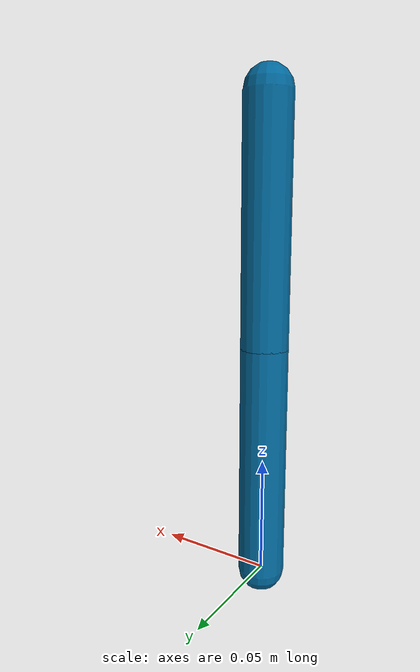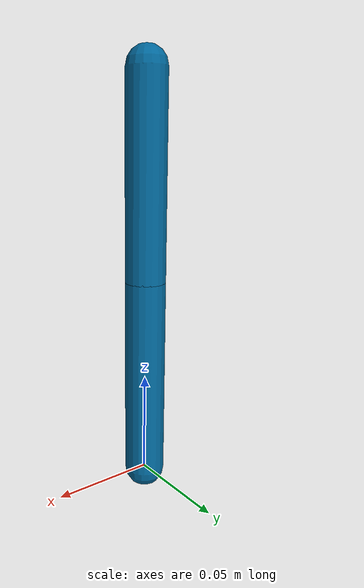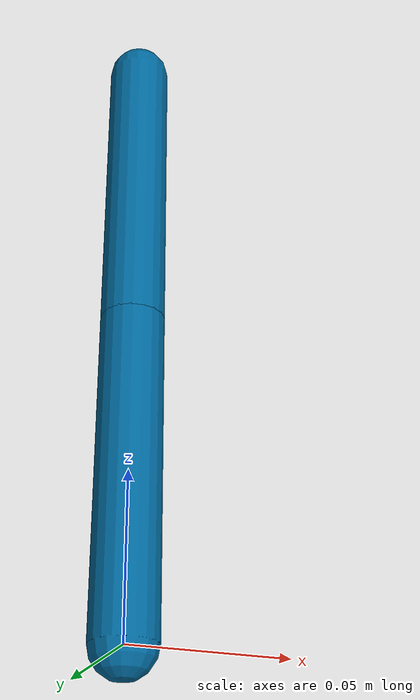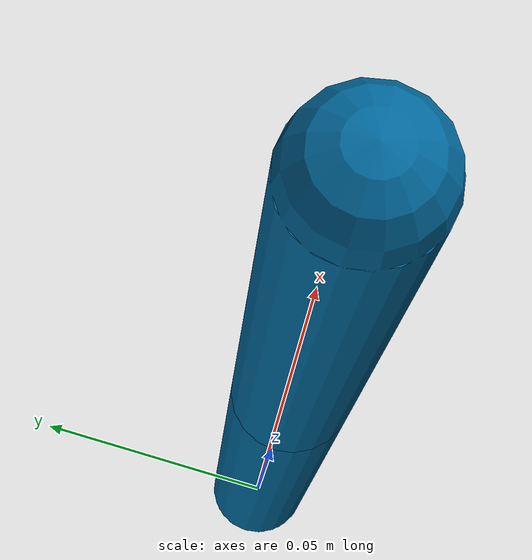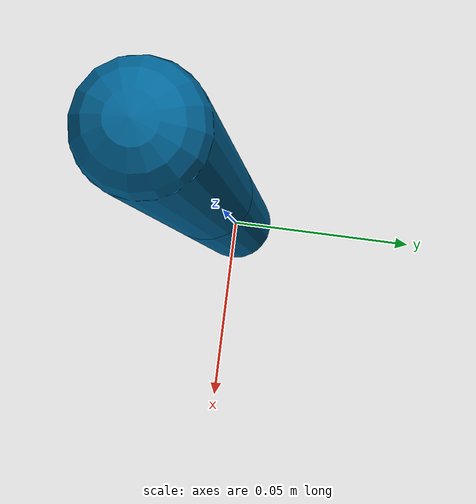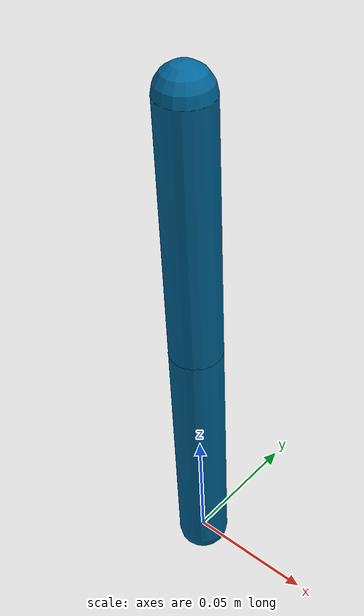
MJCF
<mujoco model="4bar">
    <compiler coordinate="local" />
    <default>
        <geom rgba="0.0 0.4 0.6 1"/>
    </default>

    <option gravity="1e-5 0 -9.81" integrator="RK4" timestep="0.01"/>

    <asset>
        <texture type='skybox' builtin='gradient' width='128' height='128' rgb1='0.4 0.6 0.8' rgb2='0 0 0'/>
        <texture name="texplane" type="2d" builtin="checker" rgb1=".4 .4 .4" rgb2=".6 .6 .6"
            width="512" height="512"/>
    </asset>

    <worldbody>
        <light directional="true" diffuse=".8 .8 .8" pos="0 0 10" dir="0 0 -10"/>

        <body name="body0" pos="0 0 0">
			<geom fromto="0 0 0 0 0 0.1" name="link0" size=".01" type="capsule"/>
			<joint axis="0 1 0" name="joint0" pos="0 0 0" type="hinge"/>

			<body name="body1" pos="0 0 0.1">
            	<geom fromto="0 0 0 0 0 0.1" name="link1"  size=".01"  type="capsule"/>
				<joint axis="0 1 0" name="joint1" pos="0 0 0" type="hinge"/>

			</body>
		</body>
    </worldbody>
</mujoco>
